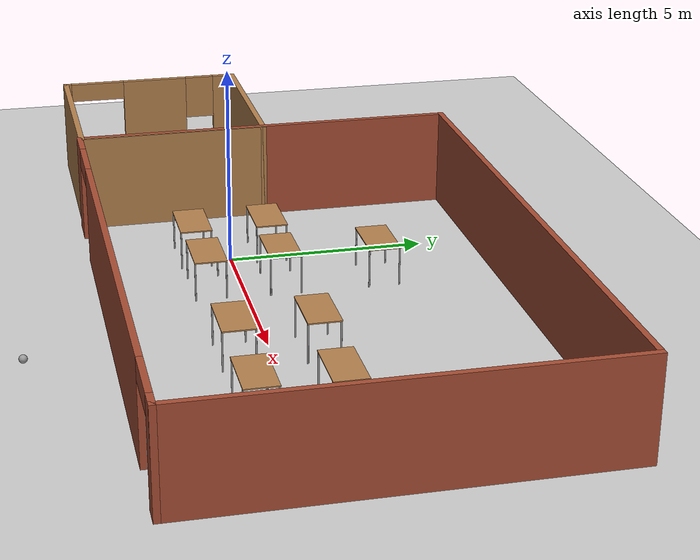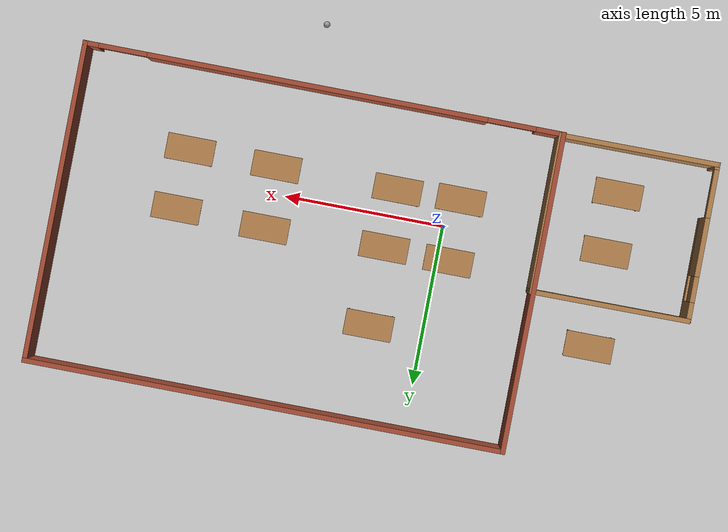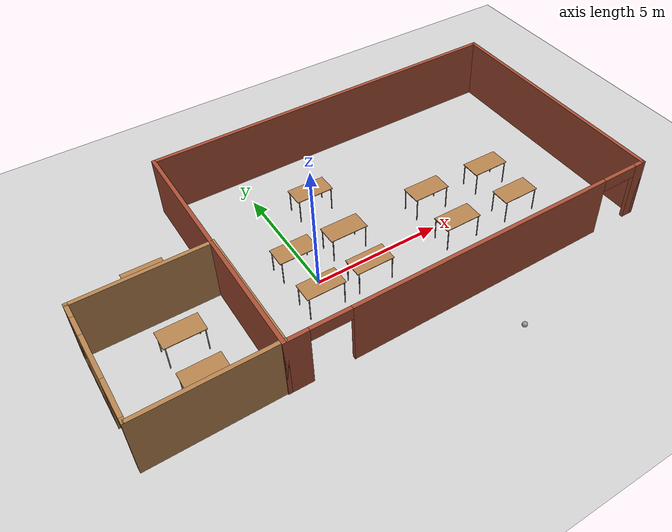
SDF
<sdf version="1.6">
 <world name="default">
  <model name="ground_plane">
   <static>1</static>
   <link name="link">
    <collision name="collision">
     <geometry><plane><normal>0 0 1</normal><size>100 100</size></plane></geometry>
     <surface>
      <contact><collide_bitmask>65535</collide_bitmask></contact>
      <friction><ode><mu>100</mu><mu2>50</mu2></ode></friction>
     </surface>
    </collision>
    <visual name="visual">
     <cast_shadows>0</cast_shadows>
     <geometry><plane><normal>0 0 1</normal><size>100 100</size></plane></geometry>
     <material>
      <script><uri>file://media/materials/scripts/gazebo.material</uri><name>Gazebo/Grey</name></script>
     </material>
    </visual>
   </link>
  </model>
  <model name="classroom">
   <pose>4.37991 1.48271 0 0 -0 0</pose>
   <link name="Wall_0">
    <collision name="Wall_0_Collision">
     <geometry><box><size>10 0.15 2.5</size></box></geometry>
     <pose>0 0 1.25 0 -0 0</pose>
    </collision>
    <visual name="Wall_0_Visual">
     <pose>0 0 1.25 0 -0 0</pose>
     <geometry><box><size>10 0.15 2.5</size></box></geometry>
     <material>
      <script><uri>file://media/materials/scripts/gazebo.material</uri><name>Gazebo/Bricks</name></script>
      <ambient>1 1 1 1</ambient>
     </material>
     <meta><layer>0</layer></meta>
    </visual>
    <pose>-7.425 0 0 0 -0 1.5708</pose>
   </link>
   <link name="Wall_2">
    <collision name="Wall_2_Collision">
     <geometry><box><size>15 0.15 2.5</size></box></geometry>
     <pose>0 0 1.25 0 -0 0</pose>
    </collision>
    <visual name="Wall_2_Visual">
     <pose>0 0 1.25 0 -0 0</pose>
     <geometry><box><size>15 0.15 2.5</size></box></geometry>
     <material>
      <script><uri>file://media/materials/scripts/gazebo.material</uri><name>Gazebo/Bricks</name></script>
      <ambient>1 1 1 1</ambient>
     </material>
     <meta><layer>0</layer></meta>
    </visual>
    <pose>0 4.925 0 0 -0 0</pose>
   </link>
   <link name="Wall_4">
    <collision name="Wall_4_Collision">
     <geometry><box><size>10 0.15 2.5</size></box></geometry>
     <pose>0 0 1.25 0 -0 0</pose>
    </collision>
    <visual name="Wall_4_Visual">
     <pose>0 0 1.25 0 -0 0</pose>
     <geometry><box><size>10 0.15 2.5</size></box></geometry>
     <material>
      <script><uri>file://media/materials/scripts/gazebo.material</uri><name>Gazebo/Bricks</name></script>
      <ambient>1 1 1 1</ambient>
     </material>
     <meta><layer>0</layer></meta>
    </visual>
    <pose>7.425 0 0 0 0 -1.5708</pose>
   </link>
   <link name="Wall_6">
    <pose>0 -4.925 0 0 -0 0</pose>
    <visual name="Wall_6_Visual_0">
     <pose>-7.03429 0 1.25 0 -0 0</pose>
     <geometry><box><size>0.931421 0.15 2.5</size></box></geometry>
     <material>
      <script><uri>file://media/materials/scripts/gazebo.material</uri><name>Gazebo/Bricks</name></script>
      <ambient>1 1 1 1</ambient>
     </material>
     <meta><layer>0</layer></meta>
    </visual>
    <collision name="Wall_6_Collision_0">
     <geometry><box><size>0.931421 0.15 2.5</size></box></geometry>
     <pose>-7.03429 0 1.25 0 -0 0</pose>
    </collision>
    <visual name="Wall_6_Visual_1">
     <pose>0.218509 0 1.25 0 -0 0</pose>
     <geometry><box><size>10.5742 0.15 2.5</size></box></geometry>
     <material>
      <script><uri>file://media/materials/scripts/gazebo.material</uri><name>Gazebo/Bricks</name></script>
      <ambient>1 1 1 1</ambient>
     </material>
     <meta><layer>0</layer></meta>
    </visual>
    <collision name="Wall_6_Collision_1">
     <geometry><box><size>10.5742 0.15 2.5</size></box></geometry>
     <pose>0.218509 0 1.25 0 -0 0</pose>
    </collision>
    <visual name="Wall_6_Visual_2">
     <pose>7.2528 0 1.25 0 -0 0</pose>
     <geometry><box><size>0.494402 0.15 2.5</size></box></geometry>
     <material>
      <script><uri>file://media/materials/scripts/gazebo.material</uri><name>Gazebo/Bricks</name></script>
      <ambient>1 1 1 1</ambient>
     </material>
     <meta><layer>0</layer></meta>
    </visual>
    <collision name="Wall_6_Collision_2">
     <geometry><box><size>0.494402 0.15 2.5</size></box></geometry>
     <pose>7.2528 0 1.25 0 -0 0</pose>
    </collision>
    <visual name="Wall_6_Visual_3">
     <pose>-5.81858 0 2.25 0 -0 0</pose>
     <geometry><box><size>1.5 0.15 0.5</size></box></geometry>
     <material>
      <script><uri>file://media/materials/scripts/gazebo.material</uri><name>Gazebo/Bricks</name></script>
      <ambient>1 1 1 1</ambient>
     </material>
     <meta><layer>0</layer></meta>
    </visual>
    <collision name="Wall_6_Collision_3">
     <geometry><box><size>1.5 0.15 0.5</size></box></geometry>
     <pose>-5.81858 0 2.25 0 -0 0</pose>
    </collision>
    <visual name="Wall_6_Visual_4">
     <pose>6.2556 0 2.25 0 -0 0</pose>
     <geometry><box><size>1.5 0.15 0.5</size></box></geometry>
     <material>
      <script><uri>file://media/materials/scripts/gazebo.material</uri><name>Gazebo/Bricks</name></script>
      <ambient>1 1 1 1</ambient>
     </material>
     <meta><layer>0</layer></meta>
    </visual>
    <collision name="Wall_6_Collision_4">
     <geometry><box><size>1.5 0.15 0.5</size></box></geometry>
     <pose>6.2556 0 2.25 0 -0 0</pose>
    </collision>
   </link>
   <static>1</static>
  </model>
  <model name="table_9">
   <static>1</static>
   <link name="link">
    <collision name="surface">
     <pose>0 0 1 0 -0 0</pose>
     <geometry><box><size>1.5 0.8 0.03</size></box></geometry>
     <surface><friction><ode><mu>0.6</mu><mu2>0.6</mu2></ode></friction></surface>
    </collision>
    <visual name="visual1">
     <pose>0 0 1 0 -0 0</pose>
     <geometry><box><size>1.5 0.8 0.03</size></box></geometry>
     <material>
      <script><uri>file://media/materials/scripts/gazebo.material</uri><name>Gazebo/Wood</name></script>
     </material>
    </visual>
    <collision name="front_left_leg">
     <pose>0.68 0.38 0.5 0 -0 0</pose>
     <geometry><cylinder><radius>0.02</radius><length>1</length></cylinder></geometry>
    </collision>
    <visual name="front_left_leg">
     <pose>0.68 0.38 0.5 0 -0 0</pose>
     <geometry><cylinder><radius>0.02</radius><length>1</length></cylinder></geometry>
     <material>
      <script><uri>file://media/materials/scripts/gazebo.material</uri><name>Gazebo/Grey</name></script>
     </material>
    </visual>
    <collision name="front_right_leg">
     <pose>0.68 -0.38 0.5 0 -0 0</pose>
     <geometry><cylinder><radius>0.02</radius><length>1</length></cylinder></geometry>
    </collision>
    <visual name="front_right_leg">
     <pose>0.68 -0.38 0.5 0 -0 0</pose>
     <geometry><cylinder><radius>0.02</radius><length>1</length></cylinder></geometry>
     <material>
      <script><uri>file://media/materials/scripts/gazebo.material</uri><name>Gazebo/Grey</name></script>
     </material>
    </visual>
    <collision name="back_right_leg">
     <pose>-0.68 -0.38 0.5 0 -0 0</pose>
     <geometry><cylinder><radius>0.02</radius><length>1</length></cylinder></geometry>
    </collision>
    <visual name="back_right_leg">
     <pose>-0.68 -0.38 0.5 0 -0 0</pose>
     <geometry><cylinder><radius>0.02</radius><length>1</length></cylinder></geometry>
     <material>
      <script><uri>file://media/materials/scripts/gazebo.material</uri><name>Gazebo/Grey</name></script>
     </material>
    </visual>
    <collision name="back_left_leg">
     <pose>-0.68 0.38 0.5 0 -0 0</pose>
     <geometry><cylinder><radius>0.02</radius><length>1</length></cylinder></geometry>
    </collision>
    <visual name="back_left_leg">
     <pose>-0.68 0.38 0.5 0 -0 0</pose>
     <geometry><cylinder><radius>0.02</radius><length>1</length></cylinder></geometry>
     <material>
      <script><uri>file://media/materials/scripts/gazebo.material</uri><name>Gazebo/Grey</name></script>
     </material>
    </visual>
   </link>
   <pose>8.12729 -0.872855 0 0 -0 0</pose>
  </model>
  <model name="table_10">
   <static>1</static>
   <link name="link">
    <collision name="surface">
     <pose>0 0 1 0 -0 0</pose>
     <geometry><box><size>1.5 0.8 0.03</size></box></geometry>
     <surface><friction><ode><mu>0.6</mu><mu2>0.6</mu2></ode></friction></surface>
    </collision>
    <visual name="visual1">
     <pose>0 0 1 0 -0 0</pose>
     <geometry><box><size>1.5 0.8 0.03</size></box></geometry>
     <material>
      <script><uri>file://media/materials/scripts/gazebo.material</uri><name>Gazebo/Wood</name></script>
     </material>
    </visual>
    <collision name="front_left_leg">
     <pose>0.68 0.38 0.5 0 -0 0</pose>
     <geometry><cylinder><radius>0.02</radius><length>1</length></cylinder></geometry>
    </collision>
    <visual name="front_left_leg">
     <pose>0.68 0.38 0.5 0 -0 0</pose>
     <geometry><cylinder><radius>0.02</radius><length>1</length></cylinder></geometry>
     <material>
      <script><uri>file://media/materials/scripts/gazebo.material</uri><name>Gazebo/Grey</name></script>
     </material>
    </visual>
    <collision name="front_right_leg">
     <pose>0.68 -0.38 0.5 0 -0 0</pose>
     <geometry><cylinder><radius>0.02</radius><length>1</length></cylinder></geometry>
    </collision>
    <visual name="front_right_leg">
     <pose>0.68 -0.38 0.5 0 -0 0</pose>
     <geometry><cylinder><radius>0.02</radius><length>1</length></cylinder></geometry>
     <material>
      <script><uri>file://media/materials/scripts/gazebo.material</uri><name>Gazebo/Grey</name></script>
     </material>
    </visual>
    <collision name="back_right_leg">
     <pose>-0.68 -0.38 0.5 0 -0 0</pose>
     <geometry><cylinder><radius>0.02</radius><length>1</length></cylinder></geometry>
    </collision>
    <visual name="back_right_leg">
     <pose>-0.68 -0.38 0.5 0 -0 0</pose>
     <geometry><cylinder><radius>0.02</radius><length>1</length></cylinder></geometry>
     <material>
      <script><uri>file://media/materials/scripts/gazebo.material</uri><name>Gazebo/Grey</name></script>
     </material>
    </visual>
    <collision name="back_left_leg">
     <pose>-0.68 0.38 0.5 0 -0 0</pose>
     <geometry><cylinder><radius>0.02</radius><length>1</length></cylinder></geometry>
    </collision>
    <visual name="back_left_leg">
     <pose>-0.68 0.38 0.5 0 -0 0</pose>
     <geometry><cylinder><radius>0.02</radius><length>1</length></cylinder></geometry>
     <material>
      <script><uri>file://media/materials/scripts/gazebo.material</uri><name>Gazebo/Grey</name></script>
     </material>
    </visual>
   </link>
   <pose>8.2006 0.992468 0 0 -0 0</pose>
  </model>
  <model name="table_13">
   <static>1</static>
   <link name="link">
    <collision name="surface">
     <pose>0 0 1 0 -0 0</pose>
     <geometry><box><size>1.5 0.8 0.03</size></box></geometry>
     <surface><friction><ode><mu>0.6</mu><mu2>0.6</mu2></ode></friction></surface>
    </collision>
    <visual name="visual1">
     <pose>0 0 1 0 -0 0</pose>
     <geometry><box><size>1.5 0.8 0.03</size></box></geometry>
     <material>
      <script><uri>file://media/materials/scripts/gazebo.material</uri><name>Gazebo/Wood</name></script>
     </material>
    </visual>
    <collision name="front_left_leg">
     <pose>0.68 0.38 0.5 0 -0 0</pose>
     <geometry><cylinder><radius>0.02</radius><length>1</length></cylinder></geometry>
    </collision>
    <visual name="front_left_leg">
     <pose>0.68 0.38 0.5 0 -0 0</pose>
     <geometry><cylinder><radius>0.02</radius><length>1</length></cylinder></geometry>
     <material>
      <script><uri>file://media/materials/scripts/gazebo.material</uri><name>Gazebo/Grey</name></script>
     </material>
    </visual>
    <collision name="front_right_leg">
     <pose>0.68 -0.38 0.5 0 -0 0</pose>
     <geometry><cylinder><radius>0.02</radius><length>1</length></cylinder></geometry>
    </collision>
    <visual name="front_right_leg">
     <pose>0.68 -0.38 0.5 0 -0 0</pose>
     <geometry><cylinder><radius>0.02</radius><length>1</length></cylinder></geometry>
     <material>
      <script><uri>file://media/materials/scripts/gazebo.material</uri><name>Gazebo/Grey</name></script>
     </material>
    </visual>
    <collision name="back_right_leg">
     <pose>-0.68 -0.38 0.5 0 -0 0</pose>
     <geometry><cylinder><radius>0.02</radius><length>1</length></cylinder></geometry>
    </collision>
    <visual name="back_right_leg">
     <pose>-0.68 -0.38 0.5 0 -0 0</pose>
     <geometry><cylinder><radius>0.02</radius><length>1</length></cylinder></geometry>
     <material>
      <script><uri>file://media/materials/scripts/gazebo.material</uri><name>Gazebo/Grey</name></script>
     </material>
    </visual>
    <collision name="back_left_leg">
     <pose>-0.68 0.38 0.5 0 -0 0</pose>
     <geometry><cylinder><radius>0.02</radius><length>1</length></cylinder></geometry>
    </collision>
    <visual name="back_left_leg">
     <pose>-0.68 0.38 0.5 0 -0 0</pose>
     <geometry><cylinder><radius>0.02</radius><length>1</length></cylinder></geometry>
     <material>
      <script><uri>file://media/materials/scripts/gazebo.material</uri><name>Gazebo/Grey</name></script>
     </material>
    </visual>
   </link>
   <pose>5.41488 -0.850729 0 0 -0 0</pose>
  </model>
  <model name="table_14">
   <static>1</static>
   <link name="link">
    <collision name="surface">
     <pose>0 0 1 0 -0 0</pose>
     <geometry><box><size>1.5 0.8 0.03</size></box></geometry>
     <surface><friction><ode><mu>0.6</mu><mu2>0.6</mu2></ode></friction></surface>
    </collision>
    <visual name="visual1">
     <pose>0 0 1 0 -0 0</pose>
     <geometry><box><size>1.5 0.8 0.03</size></box></geometry>
     <material>
      <script><uri>file://media/materials/scripts/gazebo.material</uri><name>Gazebo/Wood</name></script>
     </material>
    </visual>
    <collision name="front_left_leg">
     <pose>0.68 0.38 0.5 0 -0 0</pose>
     <geometry><cylinder><radius>0.02</radius><length>1</length></cylinder></geometry>
    </collision>
    <visual name="front_left_leg">
     <pose>0.68 0.38 0.5 0 -0 0</pose>
     <geometry><cylinder><radius>0.02</radius><length>1</length></cylinder></geometry>
     <material>
      <script><uri>file://media/materials/scripts/gazebo.material</uri><name>Gazebo/Grey</name></script>
     </material>
    </visual>
    <collision name="front_right_leg">
     <pose>0.68 -0.38 0.5 0 -0 0</pose>
     <geometry><cylinder><radius>0.02</radius><length>1</length></cylinder></geometry>
    </collision>
    <visual name="front_right_leg">
     <pose>0.68 -0.38 0.5 0 -0 0</pose>
     <geometry><cylinder><radius>0.02</radius><length>1</length></cylinder></geometry>
     <material>
      <script><uri>file://media/materials/scripts/gazebo.material</uri><name>Gazebo/Grey</name></script>
     </material>
    </visual>
    <collision name="back_right_leg">
     <pose>-0.68 -0.38 0.5 0 -0 0</pose>
     <geometry><cylinder><radius>0.02</radius><length>1</length></cylinder></geometry>
    </collision>
    <visual name="back_right_leg">
     <pose>-0.68 -0.38 0.5 0 -0 0</pose>
     <geometry><cylinder><radius>0.02</radius><length>1</length></cylinder></geometry>
     <material>
      <script><uri>file://media/materials/scripts/gazebo.material</uri><name>Gazebo/Grey</name></script>
     </material>
    </visual>
    <collision name="back_left_leg">
     <pose>-0.68 0.38 0.5 0 -0 0</pose>
     <geometry><cylinder><radius>0.02</radius><length>1</length></cylinder></geometry>
    </collision>
    <visual name="back_left_leg">
     <pose>-0.68 0.38 0.5 0 -0 0</pose>
     <geometry><cylinder><radius>0.02</radius><length>1</length></cylinder></geometry>
     <material>
      <script><uri>file://media/materials/scripts/gazebo.material</uri><name>Gazebo/Grey</name></script>
     </material>
    </visual>
   </link>
   <pose>5.41488 1.07261 0 0 -0 0</pose>
  </model>
  <model name="table_17">
   <static>1</static>
   <link name="link">
    <collision name="surface">
     <pose>0 0 1 0 -0 0</pose>
     <geometry><box><size>1.5 0.8 0.03</size></box></geometry>
     <surface><friction><ode><mu>0.6</mu><mu2>0.6</mu2></ode></friction></surface>
    </collision>
    <visual name="visual1">
     <pose>0 0 1 0 -0 0</pose>
     <geometry><box><size>1.5 0.8 0.03</size></box></geometry>
     <material>
      <script><uri>file://media/materials/scripts/gazebo.material</uri><name>Gazebo/Wood</name></script>
     </material>
    </visual>
    <collision name="front_left_leg">
     <pose>0.68 0.38 0.5 0 -0 0</pose>
     <geometry><cylinder><radius>0.02</radius><length>1</length></cylinder></geometry>
    </collision>
    <visual name="front_left_leg">
     <pose>0.68 0.38 0.5 0 -0 0</pose>
     <geometry><cylinder><radius>0.02</radius><length>1</length></cylinder></geometry>
     <material>
      <script><uri>file://media/materials/scripts/gazebo.material</uri><name>Gazebo/Grey</name></script>
     </material>
    </visual>
    <collision name="front_right_leg">
     <pose>0.68 -0.38 0.5 0 -0 0</pose>
     <geometry><cylinder><radius>0.02</radius><length>1</length></cylinder></geometry>
    </collision>
    <visual name="front_right_leg">
     <pose>0.68 -0.38 0.5 0 -0 0</pose>
     <geometry><cylinder><radius>0.02</radius><length>1</length></cylinder></geometry>
     <material>
      <script><uri>file://media/materials/scripts/gazebo.material</uri><name>Gazebo/Grey</name></script>
     </material>
    </visual>
    <collision name="back_right_leg">
     <pose>-0.68 -0.38 0.5 0 -0 0</pose>
     <geometry><cylinder><radius>0.02</radius><length>1</length></cylinder></geometry>
    </collision>
    <visual name="back_right_leg">
     <pose>-0.68 -0.38 0.5 0 -0 0</pose>
     <geometry><cylinder><radius>0.02</radius><length>1</length></cylinder></geometry>
     <material>
      <script><uri>file://media/materials/scripts/gazebo.material</uri><name>Gazebo/Grey</name></script>
     </material>
    </visual>
    <collision name="back_left_leg">
     <pose>-0.68 0.38 0.5 0 -0 0</pose>
     <geometry><cylinder><radius>0.02</radius><length>1</length></cylinder></geometry>
    </collision>
    <visual name="back_left_leg">
     <pose>-0.68 0.38 0.5 0 -0 0</pose>
     <geometry><cylinder><radius>0.02</radius><length>1</length></cylinder></geometry>
     <material>
      <script><uri>file://media/materials/scripts/gazebo.material</uri><name>Gazebo/Grey</name></script>
     </material>
    </visual>
   </link>
   <pose>1.60277 -0.861568 0 0 -0 0</pose>
  </model>
  <model name="table_18">
   <static>1</static>
   <link name="link">
    <collision name="surface">
     <pose>0 0 1 0 -0 0</pose>
     <geometry><box><size>1.5 0.8 0.03</size></box></geometry>
     <surface><friction><ode><mu>0.6</mu><mu2>0.6</mu2></ode></friction></surface>
    </collision>
    <visual name="visual1">
     <pose>0 0 1 0 -0 0</pose>
     <geometry><box><size>1.5 0.8 0.03</size></box></geometry>
     <material>
      <script><uri>file://media/materials/scripts/gazebo.material</uri><name>Gazebo/Wood</name></script>
     </material>
    </visual>
    <collision name="front_left_leg">
     <pose>0.68 0.38 0.5 0 -0 0</pose>
     <geometry><cylinder><radius>0.02</radius><length>1</length></cylinder></geometry>
    </collision>
    <visual name="front_left_leg">
     <pose>0.68 0.38 0.5 0 -0 0</pose>
     <geometry><cylinder><radius>0.02</radius><length>1</length></cylinder></geometry>
     <material>
      <script><uri>file://media/materials/scripts/gazebo.material</uri><name>Gazebo/Grey</name></script>
     </material>
    </visual>
    <collision name="front_right_leg">
     <pose>0.68 -0.38 0.5 0 -0 0</pose>
     <geometry><cylinder><radius>0.02</radius><length>1</length></cylinder></geometry>
    </collision>
    <visual name="front_right_leg">
     <pose>0.68 -0.38 0.5 0 -0 0</pose>
     <geometry><cylinder><radius>0.02</radius><length>1</length></cylinder></geometry>
     <material>
      <script><uri>file://media/materials/scripts/gazebo.material</uri><name>Gazebo/Grey</name></script>
     </material>
    </visual>
    <collision name="back_right_leg">
     <pose>-0.68 -0.38 0.5 0 -0 0</pose>
     <geometry><cylinder><radius>0.02</radius><length>1</length></cylinder></geometry>
    </collision>
    <visual name="back_right_leg">
     <pose>-0.68 -0.38 0.5 0 -0 0</pose>
     <geometry><cylinder><radius>0.02</radius><length>1</length></cylinder></geometry>
     <material>
      <script><uri>file://media/materials/scripts/gazebo.material</uri><name>Gazebo/Grey</name></script>
     </material>
    </visual>
    <collision name="back_left_leg">
     <pose>-0.68 0.38 0.5 0 -0 0</pose>
     <geometry><cylinder><radius>0.02</radius><length>1</length></cylinder></geometry>
    </collision>
    <visual name="back_left_leg">
     <pose>-0.68 0.38 0.5 0 -0 0</pose>
     <geometry><cylinder><radius>0.02</radius><length>1</length></cylinder></geometry>
     <material>
      <script><uri>file://media/materials/scripts/gazebo.material</uri><name>Gazebo/Grey</name></script>
     </material>
    </visual>
   </link>
   <pose>1.67614 0.969748 0 0 -0 0</pose>
  </model>
  <model name="table_19">
   <static>1</static>
   <link name="link">
    <collision name="surface">
     <pose>0 0 1 0 -0 0</pose>
     <geometry><box><size>1.5 0.8 0.03</size></box></geometry>
     <surface><friction><ode><mu>0.6</mu><mu2>0.6</mu2></ode></friction></surface>
    </collision>
    <visual name="visual1">
     <pose>0 0 1 0 -0 0</pose>
     <geometry><box><size>1.5 0.8 0.03</size></box></geometry>
     <material>
      <script><uri>file://media/materials/scripts/gazebo.material</uri><name>Gazebo/Wood</name></script>
     </material>
    </visual>
    <collision name="front_left_leg">
     <pose>0.68 0.38 0.5 0 -0 0</pose>
     <geometry><cylinder><radius>0.02</radius><length>1</length></cylinder></geometry>
    </collision>
    <visual name="front_left_leg">
     <pose>0.68 0.38 0.5 0 -0 0</pose>
     <geometry><cylinder><radius>0.02</radius><length>1</length></cylinder></geometry>
     <material>
      <script><uri>file://media/materials/scripts/gazebo.material</uri><name>Gazebo/Grey</name></script>
     </material>
    </visual>
    <collision name="front_right_leg">
     <pose>0.68 -0.38 0.5 0 -0 0</pose>
     <geometry><cylinder><radius>0.02</radius><length>1</length></cylinder></geometry>
    </collision>
    <visual name="front_right_leg">
     <pose>0.68 -0.38 0.5 0 -0 0</pose>
     <geometry><cylinder><radius>0.02</radius><length>1</length></cylinder></geometry>
     <material>
      <script><uri>file://media/materials/scripts/gazebo.material</uri><name>Gazebo/Grey</name></script>
     </material>
    </visual>
    <collision name="back_right_leg">
     <pose>-0.68 -0.38 0.5 0 -0 0</pose>
     <geometry><cylinder><radius>0.02</radius><length>1</length></cylinder></geometry>
    </collision>
    <visual name="back_right_leg">
     <pose>-0.68 -0.38 0.5 0 -0 0</pose>
     <geometry><cylinder><radius>0.02</radius><length>1</length></cylinder></geometry>
     <material>
      <script><uri>file://media/materials/scripts/gazebo.material</uri><name>Gazebo/Grey</name></script>
     </material>
    </visual>
    <collision name="back_left_leg">
     <pose>-0.68 0.38 0.5 0 -0 0</pose>
     <geometry><cylinder><radius>0.02</radius><length>1</length></cylinder></geometry>
    </collision>
    <visual name="back_left_leg">
     <pose>-0.68 0.38 0.5 0 -0 0</pose>
     <geometry><cylinder><radius>0.02</radius><length>1</length></cylinder></geometry>
     <material>
      <script><uri>file://media/materials/scripts/gazebo.material</uri><name>Gazebo/Grey</name></script>
     </material>
    </visual>
   </link>
   <pose>1.69361 3.42587 0 0 -0 0</pose>
  </model>
  <model name="table_21">
   <static>1</static>
   <link name="link">
    <collision name="surface">
     <pose>0 0 1 0 -0 0</pose>
     <geometry><box><size>1.5 0.8 0.03</size></box></geometry>
     <surface><friction><ode><mu>0.6</mu><mu2>0.6</mu2></ode></friction></surface>
    </collision>
    <visual name="visual1">
     <pose>0 0 1 0 -0 0</pose>
     <geometry><box><size>1.5 0.8 0.03</size></box></geometry>
     <material>
      <script><uri>file://media/materials/scripts/gazebo.material</uri><name>Gazebo/Wood</name></script>
     </material>
    </visual>
    <collision name="front_left_leg">
     <pose>0.68 0.38 0.5 0 -0 0</pose>
     <geometry><cylinder><radius>0.02</radius><length>1</length></cylinder></geometry>
    </collision>
    <visual name="front_left_leg">
     <pose>0.68 0.38 0.5 0 -0 0</pose>
     <geometry><cylinder><radius>0.02</radius><length>1</length></cylinder></geometry>
     <material>
      <script><uri>file://media/materials/scripts/gazebo.material</uri><name>Gazebo/Grey</name></script>
     </material>
    </visual>
    <collision name="front_right_leg">
     <pose>0.68 -0.38 0.5 0 -0 0</pose>
     <geometry><cylinder><radius>0.02</radius><length>1</length></cylinder></geometry>
    </collision>
    <visual name="front_right_leg">
     <pose>0.68 -0.38 0.5 0 -0 0</pose>
     <geometry><cylinder><radius>0.02</radius><length>1</length></cylinder></geometry>
     <material>
      <script><uri>file://media/materials/scripts/gazebo.material</uri><name>Gazebo/Grey</name></script>
     </material>
    </visual>
    <collision name="back_right_leg">
     <pose>-0.68 -0.38 0.5 0 -0 0</pose>
     <geometry><cylinder><radius>0.02</radius><length>1</length></cylinder></geometry>
    </collision>
    <visual name="back_right_leg">
     <pose>-0.68 -0.38 0.5 0 -0 0</pose>
     <geometry><cylinder><radius>0.02</radius><length>1</length></cylinder></geometry>
     <material>
      <script><uri>file://media/materials/scripts/gazebo.material</uri><name>Gazebo/Grey</name></script>
     </material>
    </visual>
    <collision name="back_left_leg">
     <pose>-0.68 0.38 0.5 0 -0 0</pose>
     <geometry><cylinder><radius>0.02</radius><length>1</length></cylinder></geometry>
    </collision>
    <visual name="back_left_leg">
     <pose>-0.68 0.38 0.5 0 -0 0</pose>
     <geometry><cylinder><radius>0.02</radius><length>1</length></cylinder></geometry>
     <material>
      <script><uri>file://media/materials/scripts/gazebo.material</uri><name>Gazebo/Grey</name></script>
     </material>
    </visual>
   </link>
   <pose>-0.376572 -0.91148 0 0 -0 0</pose>
  </model>
  <model name="table_22">
   <static>1</static>
   <link name="link">
    <collision name="surface">
     <pose>0 0 1 0 -0 0</pose>
     <geometry><box><size>1.5 0.8 0.03</size></box></geometry>
     <surface><friction><ode><mu>0.6</mu><mu2>0.6</mu2></ode></friction></surface>
    </collision>
    <visual name="visual1">
     <pose>0 0 1 0 -0 0</pose>
     <geometry><box><size>1.5 0.8 0.03</size></box></geometry>
     <material>
      <script><uri>file://media/materials/scripts/gazebo.material</uri><name>Gazebo/Wood</name></script>
     </material>
    </visual>
    <collision name="front_left_leg">
     <pose>0.68 0.38 0.5 0 -0 0</pose>
     <geometry><cylinder><radius>0.02</radius><length>1</length></cylinder></geometry>
    </collision>
    <visual name="front_left_leg">
     <pose>0.68 0.38 0.5 0 -0 0</pose>
     <geometry><cylinder><radius>0.02</radius><length>1</length></cylinder></geometry>
     <material>
      <script><uri>file://media/materials/scripts/gazebo.material</uri><name>Gazebo/Grey</name></script>
     </material>
    </visual>
    <collision name="front_right_leg">
     <pose>0.68 -0.38 0.5 0 -0 0</pose>
     <geometry><cylinder><radius>0.02</radius><length>1</length></cylinder></geometry>
    </collision>
    <visual name="front_right_leg">
     <pose>0.68 -0.38 0.5 0 -0 0</pose>
     <geometry><cylinder><radius>0.02</radius><length>1</length></cylinder></geometry>
     <material>
      <script><uri>file://media/materials/scripts/gazebo.material</uri><name>Gazebo/Grey</name></script>
     </material>
    </visual>
    <collision name="back_right_leg">
     <pose>-0.68 -0.38 0.5 0 -0 0</pose>
     <geometry><cylinder><radius>0.02</radius><length>1</length></cylinder></geometry>
    </collision>
    <visual name="back_right_leg">
     <pose>-0.68 -0.38 0.5 0 -0 0</pose>
     <geometry><cylinder><radius>0.02</radius><length>1</length></cylinder></geometry>
     <material>
      <script><uri>file://media/materials/scripts/gazebo.material</uri><name>Gazebo/Grey</name></script>
     </material>
    </visual>
    <collision name="back_left_leg">
     <pose>-0.68 0.38 0.5 0 -0 0</pose>
     <geometry><cylinder><radius>0.02</radius><length>1</length></cylinder></geometry>
    </collision>
    <visual name="back_left_leg">
     <pose>-0.68 0.38 0.5 0 -0 0</pose>
     <geometry><cylinder><radius>0.02</radius><length>1</length></cylinder></geometry>
     <material>
      <script><uri>file://media/materials/scripts/gazebo.material</uri><name>Gazebo/Grey</name></script>
     </material>
    </visual>
   </link>
   <pose>-0.353964 1.01169 0 0 -0 0</pose>
  </model>
  <model name="my_ball">
   <link name="link">
    <inertial>
     <mass>1</mass>
     <inertia><ixx>0.1</ixx><ixy>0</ixy><ixz>0</ixz><iyy>0.1</iyy><iyz>0</iyz><izz>0.1</izz></inertia>
    </inertial>
    <visual name="visual">
     <geometry><sphere><radius>0.1</radius></sphere></geometry>
     <material>
      <script><name>Gazebo/Grey</name><uri>file://media/materials/scripts/gazebo.material</uri></script>
      <shader type="pixel"><normal_map>__default__</normal_map></shader>
      <ambient>1 1 1 1</ambient>
      <diffuse>1 1 1 1</diffuse>
      <specular>1 1 1 1</specular>
      <emissive>1 1 1 1</emissive>
     </material>
    </visual>
    <collision name="collision">
     <geometry><sphere><radius>0.1</radius></sphere></geometry>
     <surface>
      <friction>
       <ode><mu>1</mu><mu2>1</mu2><fdir1>0 0 0</fdir1><slip1>0</slip1><slip2>0</slip2></ode>
       <torsional>
        <coefficient>1</coefficient>
        <patch_radius>0</patch_radius>
        <surface_radius>0</surface_radius>
        <use_patch_radius>1</use_patch_radius>
        <ode><slip>0</slip></ode>
       </torsional>
      </friction>
      <bounce><restitution_coefficient>0</restitution_coefficient><threshold>1e+06</threshold></bounce>
      <contact>
       <collide_without_contact>0</collide_without_contact>
       <collide_without_contact_bitmask>1</collide_without_contact_bitmask>
       <collide_bitmask>1</collide_bitmask>
       <ode>
        <soft_cfm>0</soft_cfm>
        <soft_erp>0.2</soft_erp>
        <kp>1e+13</kp>
        <kd>1</kd>
        <max_vel>0.01</max_vel>
        <min_depth>0</min_depth>
       </ode>
       <bullet>
        <split_impulse>1</split_impulse>
        <split_impulse_penetration_threshold>-0.01</split_impulse_penetration_threshold>
        <soft_cfm>0</soft_cfm>
        <soft_erp>0.2</soft_erp>
        <kp>1e+13</kp>
        <kd>1</kd>
       </bullet>
      </contact>
     </surface>
    </collision>
   </link>
   <static>0</static>
   <pose>4.72778 -5.50121 0.1 0 -0 0</pose>
  </model>
  <model name="studio_1_clone_clone_0">
   <pose>-5.41278 -0.989335 0 0 0 -1.56723</pose>
   <link name="Wall_10">
    <collision name="Wall_10_Collision">
     <geometry><box><size>5 0.15 2.5</size></box></geometry>
     <pose>0 0 1.25 0 -0 0</pose>
    </collision>
    <visual name="Wall_10_Visual">
     <pose>0 0 1.25 0 -0 0</pose>
     <geometry><box><size>5 0.15 2.5</size></box></geometry>
     <material>
      <script><uri>file://media/materials/scripts/gazebo.material</uri><name>Gazebo/Wood</name></script>
      <ambient>1 1 1 1</ambient>
     </material>
     <meta><layer>0</layer></meta>
    </visual>
    <pose>0 2.42482 0 0 0 -7.3e-05</pose>
   </link>
   <link name="Wall_13">
    <collision name="Wall_13_Collision">
     <geometry><box><size>5 0.15 2.5</size></box></geometry>
     <pose>0 0 1.25 0 -0 0</pose>
    </collision>
    <visual name="Wall_13_Visual">
     <pose>0 0 1.25 0 -0 0</pose>
     <geometry><box><size>5 0.15 2.5</size></box></geometry>
     <material>
      <script><uri>file://media/materials/scripts/gazebo.material</uri><name>Gazebo/Wood</name></script>
      <ambient>1 1 1 1</ambient>
     </material>
     <meta><layer>0</layer></meta>
    </visual>
    <pose>-2.42502 -3e-06 0 0 0 -1.5708</pose>
   </link>
   <link name="Wall_15">
    <pose>-2e-05 -2.425 0 0 -0 0</pose>
    <visual name="Wall_15_Visual_0">
     <pose>-2.17395 0 1.25 0 -0 0</pose>
     <geometry><box><size>0.652095 0.15 2.5</size></box></geometry>
     <material>
      <script><uri>file://media/materials/scripts/gazebo.material</uri><name>Gazebo/Wood</name></script>
      <ambient>1 1 1 1</ambient>
     </material>
     <meta><layer>0</layer></meta>
    </visual>
    <collision name="Wall_15_Collision_0">
     <geometry><box><size>0.652095 0.15 2.5</size></box></geometry>
     <pose>-2.17395 0 1.25 0 -0 0</pose>
    </collision>
    <visual name="Wall_15_Visual_1">
     <pose>2.38574 0 1.25 0 -0 0</pose>
     <geometry><box><size>0.228515 0.15 2.5</size></box></geometry>
     <material>
      <script><uri>file://media/materials/scripts/gazebo.material</uri><name>Gazebo/Wood</name></script>
      <ambient>1 1 1 1</ambient>
     </material>
     <meta><layer>0</layer></meta>
    </visual>
    <collision name="Wall_15_Collision_1">
     <geometry><box><size>0.228515 0.15 2.5</size></box></geometry>
     <pose>2.38574 0 1.25 0 -0 0</pose>
    </collision>
    <visual name="Wall_15_Visual_2">
     <pose>-0.53821 0 0.25 0 -0 0</pose>
     <geometry><box><size>2.61939 0.15 0.5</size></box></geometry>
     <material>
      <script><uri>file://media/materials/scripts/gazebo.material</uri><name>Gazebo/Wood</name></script>
      <ambient>1 1 1 1</ambient>
     </material>
     <meta><layer>0</layer></meta>
    </visual>
    <collision name="Wall_15_Collision_2">
     <geometry><box><size>2.61939 0.15 0.5</size></box></geometry>
     <pose>-0.53821 0 0.25 0 -0 0</pose>
    </collision>
    <visual name="Wall_15_Visual_3">
     <pose>-0.13821 0 1.5 0 -0 0</pose>
     <geometry><box><size>1.81939 0.15 2</size></box></geometry>
     <material>
      <script><uri>file://media/materials/scripts/gazebo.material</uri><name>Gazebo/Wood</name></script>
      <ambient>1 1 1 1</ambient>
     </material>
     <meta><layer>0</layer></meta>
    </visual>
    <collision name="Wall_15_Collision_3">
     <geometry><box><size>1.81939 0.15 2</size></box></geometry>
     <pose>-0.13821 0 1.5 0 -0 0</pose>
    </collision>
    <visual name="Wall_15_Visual_4">
     <pose>-1.4479 0 1.9 0 -0 0</pose>
     <geometry><box><size>0.8 0.15 1.2</size></box></geometry>
     <material>
      <script><uri>file://media/materials/scripts/gazebo.material</uri><name>Gazebo/Wood</name></script>
      <ambient>1 1 1 1</ambient>
     </material>
     <meta><layer>0</layer></meta>
    </visual>
    <collision name="Wall_15_Collision_4">
     <geometry><box><size>0.8 0.15 1.2</size></box></geometry>
     <pose>-1.4479 0 1.9 0 -0 0</pose>
    </collision>
    <visual name="Wall_15_Visual_5">
     <pose>1.52148 0 2.25 0 -0 0</pose>
     <geometry><box><size>1.5 0.15 0.5</size></box></geometry>
     <material>
      <script><uri>file://media/materials/scripts/gazebo.material</uri><name>Gazebo/Wood</name></script>
      <ambient>1 1 1 1</ambient>
     </material>
     <meta><layer>0</layer></meta>
    </visual>
    <collision name="Wall_15_Collision_5">
     <geometry><box><size>1.5 0.15 0.5</size></box></geometry>
     <pose>1.52148 0 2.25 0 -0 0</pose>
    </collision>
   </link>
   <link name="Wall_16">
    <collision name="Wall_16_Collision">
     <geometry><box><size>4.99965 0.15 2.5</size></box></geometry>
     <pose>0 0 1.25 0 -0 0</pose>
    </collision>
    <visual name="Wall_16_Visual">
     <pose>0 0 1.25 0 -0 0</pose>
     <geometry><box><size>4.99965 0.15 2.5</size></box></geometry>
     <material>
      <script><uri>file://media/materials/scripts/gazebo.material</uri><name>Gazebo/Wood</name></script>
      <ambient>1 1 1 1</ambient>
     </material>
     <meta><layer>0</layer></meta>
    </visual>
    <pose>2.425 -0.00018 0 0 -0 1.57079</pose>
   </link>
   <static>1</static>
  </model>
  <model name="table_23_clone_0">
   <static>1</static>
   <link name="link">
    <collision name="surface">
     <pose>0 0 1 0 -0 0</pose>
     <geometry><box><size>1.5 0.8 0.03</size></box></geometry>
     <surface><friction><ode><mu>0.6</mu><mu2>0.6</mu2></ode></friction></surface>
    </collision>
    <visual name="visual1">
     <pose>0 0 1 0 -0 0</pose>
     <geometry><box><size>1.5 0.8 0.03</size></box></geometry>
     <material>
      <script><uri>file://media/materials/scripts/gazebo.material</uri><name>Gazebo/Wood</name></script>
     </material>
    </visual>
    <collision name="front_left_leg">
     <pose>0.68 0.38 0.5 0 -0 0</pose>
     <geometry><cylinder><radius>0.02</radius><length>1</length></cylinder></geometry>
    </collision>
    <visual name="front_left_leg">
     <pose>0.68 0.38 0.5 0 -0 0</pose>
     <geometry><cylinder><radius>0.02</radius><length>1</length></cylinder></geometry>
     <material>
      <script><uri>file://media/materials/scripts/gazebo.material</uri><name>Gazebo/Grey</name></script>
     </material>
    </visual>
    <collision name="front_right_leg">
     <pose>0.68 -0.38 0.5 0 -0 0</pose>
     <geometry><cylinder><radius>0.02</radius><length>1</length></cylinder></geometry>
    </collision>
    <visual name="front_right_leg">
     <pose>0.68 -0.38 0.5 0 -0 0</pose>
     <geometry><cylinder><radius>0.02</radius><length>1</length></cylinder></geometry>
     <material>
      <script><uri>file://media/materials/scripts/gazebo.material</uri><name>Gazebo/Grey</name></script>
     </material>
    </visual>
    <collision name="back_right_leg">
     <pose>-0.68 -0.38 0.5 0 -0 0</pose>
     <geometry><cylinder><radius>0.02</radius><length>1</length></cylinder></geometry>
    </collision>
    <visual name="back_right_leg">
     <pose>-0.68 -0.38 0.5 0 -0 0</pose>
     <geometry><cylinder><radius>0.02</radius><length>1</length></cylinder></geometry>
     <material>
      <script><uri>file://media/materials/scripts/gazebo.material</uri><name>Gazebo/Grey</name></script>
     </material>
    </visual>
    <collision name="back_left_leg">
     <pose>-0.68 0.38 0.5 0 -0 0</pose>
     <geometry><cylinder><radius>0.02</radius><length>1</length></cylinder></geometry>
    </collision>
    <visual name="back_left_leg">
     <pose>-0.68 0.38 0.5 0 -0 0</pose>
     <geometry><cylinder><radius>0.02</radius><length>1</length></cylinder></geometry>
     <material>
      <script><uri>file://media/materials/scripts/gazebo.material</uri><name>Gazebo/Grey</name></script>
     </material>
    </visual>
   </link>
   <pose>-5.10845 2.80294 0 0 -0 0</pose>
  </model>
  <model name="table_23_clone_1">
   <static>1</static>
   <link name="link">
    <collision name="surface">
     <pose>0 0 1 0 -0 0</pose>
     <geometry><box><size>1.5 0.8 0.03</size></box></geometry>
     <surface><friction><ode><mu>0.6</mu><mu2>0.6</mu2></ode></friction></surface>
    </collision>
    <visual name="visual1">
     <pose>0 0 1 0 -0 0</pose>
     <geometry><box><size>1.5 0.8 0.03</size></box></geometry>
     <material>
      <script><uri>file://media/materials/scripts/gazebo.material</uri><name>Gazebo/Wood</name></script>
     </material>
    </visual>
    <collision name="front_left_leg">
     <pose>0.68 0.38 0.5 0 -0 0</pose>
     <geometry><cylinder><radius>0.02</radius><length>1</length></cylinder></geometry>
    </collision>
    <visual name="front_left_leg">
     <pose>0.68 0.38 0.5 0 -0 0</pose>
     <geometry><cylinder><radius>0.02</radius><length>1</length></cylinder></geometry>
     <material>
      <script><uri>file://media/materials/scripts/gazebo.material</uri><name>Gazebo/Grey</name></script>
     </material>
    </visual>
    <collision name="front_right_leg">
     <pose>0.68 -0.38 0.5 0 -0 0</pose>
     <geometry><cylinder><radius>0.02</radius><length>1</length></cylinder></geometry>
    </collision>
    <visual name="front_right_leg">
     <pose>0.68 -0.38 0.5 0 -0 0</pose>
     <geometry><cylinder><radius>0.02</radius><length>1</length></cylinder></geometry>
     <material>
      <script><uri>file://media/materials/scripts/gazebo.material</uri><name>Gazebo/Grey</name></script>
     </material>
    </visual>
    <collision name="back_right_leg">
     <pose>-0.68 -0.38 0.5 0 -0 0</pose>
     <geometry><cylinder><radius>0.02</radius><length>1</length></cylinder></geometry>
    </collision>
    <visual name="back_right_leg">
     <pose>-0.68 -0.38 0.5 0 -0 0</pose>
     <geometry><cylinder><radius>0.02</radius><length>1</length></cylinder></geometry>
     <material>
      <script><uri>file://media/materials/scripts/gazebo.material</uri><name>Gazebo/Grey</name></script>
     </material>
    </visual>
    <collision name="back_left_leg">
     <pose>-0.68 0.38 0.5 0 -0 0</pose>
     <geometry><cylinder><radius>0.02</radius><length>1</length></cylinder></geometry>
    </collision>
    <visual name="back_left_leg">
     <pose>-0.68 0.38 0.5 0 -0 0</pose>
     <geometry><cylinder><radius>0.02</radius><length>1</length></cylinder></geometry>
     <material>
      <script><uri>file://media/materials/scripts/gazebo.material</uri><name>Gazebo/Grey</name></script>
     </material>
    </visual>
   </link>
   <pose>-5.08181 -0.174302 0 0 -0 0</pose>
  </model>
  <model name="table_23_clone_2">
   <static>1</static>
   <link name="link">
    <collision name="surface">
     <pose>0 0 1 0 -0 0</pose>
     <geometry><box><size>1.5 0.8 0.03</size></box></geometry>
     <surface><friction><ode><mu>0.6</mu><mu2>0.6</mu2></ode></friction></surface>
    </collision>
    <visual name="visual1">
     <pose>0 0 1 0 -0 0</pose>
     <geometry><box><size>1.5 0.8 0.03</size></box></geometry>
     <material>
      <script><uri>file://media/materials/scripts/gazebo.material</uri><name>Gazebo/Wood</name></script>
     </material>
    </visual>
    <collision name="front_left_leg">
     <pose>0.68 0.38 0.5 0 -0 0</pose>
     <geometry><cylinder><radius>0.02</radius><length>1</length></cylinder></geometry>
    </collision>
    <visual name="front_left_leg">
     <pose>0.68 0.38 0.5 0 -0 0</pose>
     <geometry><cylinder><radius>0.02</radius><length>1</length></cylinder></geometry>
     <material>
      <script><uri>file://media/materials/scripts/gazebo.material</uri><name>Gazebo/Grey</name></script>
     </material>
    </visual>
    <collision name="front_right_leg">
     <pose>0.68 -0.38 0.5 0 -0 0</pose>
     <geometry><cylinder><radius>0.02</radius><length>1</length></cylinder></geometry>
    </collision>
    <visual name="front_right_leg">
     <pose>0.68 -0.38 0.5 0 -0 0</pose>
     <geometry><cylinder><radius>0.02</radius><length>1</length></cylinder></geometry>
     <material>
      <script><uri>file://media/materials/scripts/gazebo.material</uri><name>Gazebo/Grey</name></script>
     </material>
    </visual>
    <collision name="back_right_leg">
     <pose>-0.68 -0.38 0.5 0 -0 0</pose>
     <geometry><cylinder><radius>0.02</radius><length>1</length></cylinder></geometry>
    </collision>
    <visual name="back_right_leg">
     <pose>-0.68 -0.38 0.5 0 -0 0</pose>
     <geometry><cylinder><radius>0.02</radius><length>1</length></cylinder></geometry>
     <material>
      <script><uri>file://media/materials/scripts/gazebo.material</uri><name>Gazebo/Grey</name></script>
     </material>
    </visual>
    <collision name="back_left_leg">
     <pose>-0.68 0.38 0.5 0 -0 0</pose>
     <geometry><cylinder><radius>0.02</radius><length>1</length></cylinder></geometry>
    </collision>
    <visual name="back_left_leg">
     <pose>-0.68 0.38 0.5 0 -0 0</pose>
     <geometry><cylinder><radius>0.02</radius><length>1</length></cylinder></geometry>
     <material>
      <script><uri>file://media/materials/scripts/gazebo.material</uri><name>Gazebo/Grey</name></script>
     </material>
    </visual>
   </link>
   <pose>-5.10845 -2.00843 0 0 -0 0</pose>
  </model>
 </world>
</sdf>
